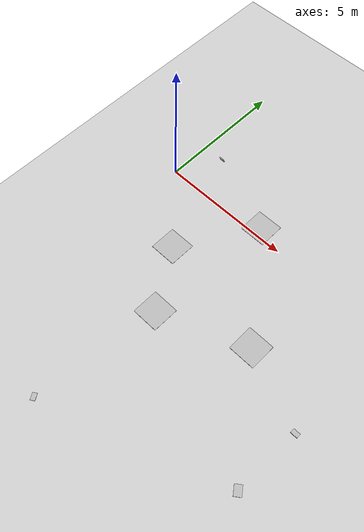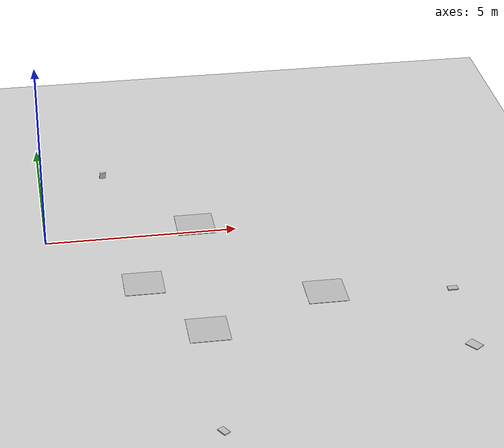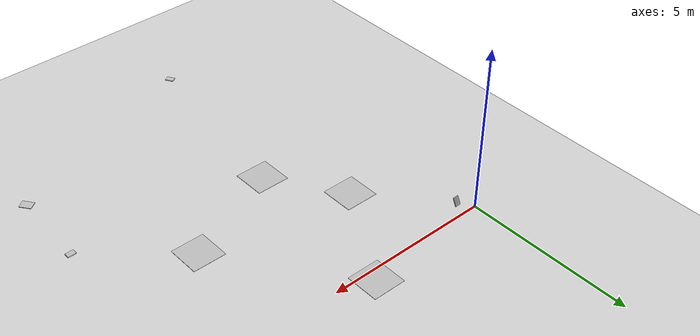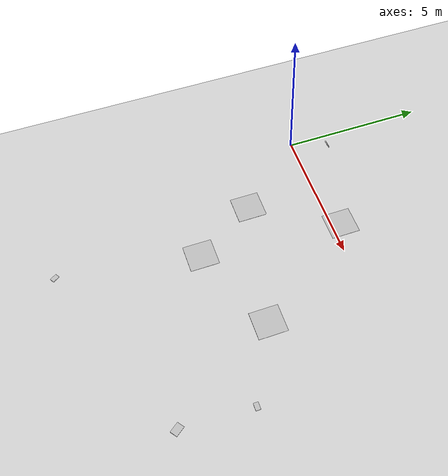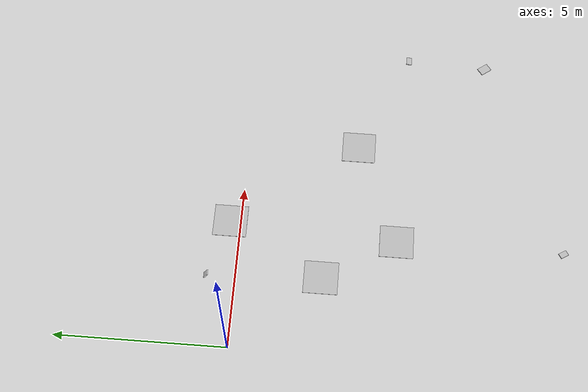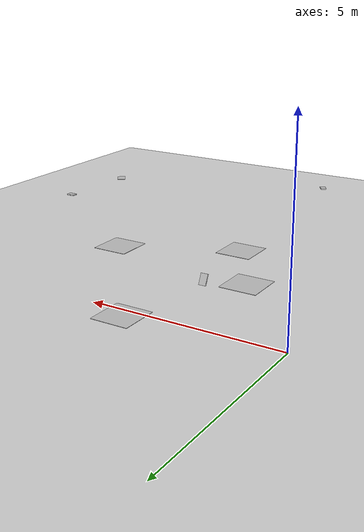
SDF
<sdf version="1.6">
 <world name="default">
  <model name="ground_plane">
   <static>1</static>
   <link name="link">
    <collision name="collision">
     <geometry><plane><normal>0 0 1</normal><size>100 100</size></plane></geometry>
     <surface><friction><ode><mu>1</mu><mu2>1</mu2></ode></friction></surface>
    </collision>
    <visual name="visual">
     <cast_shadows>0</cast_shadows>
     <geometry><plane><normal>0 0 1</normal><size>100 100</size></plane></geometry>
     <material>
      <script><uri>file://media/materials/scripts/gazebo.material</uri><name>Gazebo/Grey</name></script>
     </material>
    </visual>
    <velocity_decay><linear>0</linear><angular>0</angular></velocity_decay>
   </link>
  </model>
  <model name="book_14">
   <link name="cover">
    <pose>0 -0.000108 0.015405 0 -0 0</pose>
    <visual name="visual">
     <geometry><box><size>0.245 0.16 0.03</size></box></geometry>
     <material>
      <script>
       <uri>model://book_14/materials/scripts</uri>
       <uri>model://book_14/materials/textures</uri>
       <name>book_14</name>
      </script>
     </material>
    </visual>
    <collision name="collision"><geometry><box><size>0.245 0.16 0.03</size></box></geometry></collision>
   </link>
   <link name="page">
    <pose>0 0.000608 0.015405 0 -0 0</pose>
    <visual name="visual">
     <geometry><box><size>0.24502 0.15862 0.028</size></box></geometry>
     <material>
      <lighting>1</lighting>
      <ambient>1 1 1 1</ambient>
      <diffuse>1 1 1 1</diffuse>
      <specular>0.01 0.01 0.01 1</specular>
      <emissive>0 0 0 1</emissive>
      <shader type="vertex"><normal_map>__default__</normal_map></shader>
     </material>
    </visual>
    <collision name="collision"><geometry><box><size>0.245 0.16 0.03</size></box></geometry></collision>
   </link>
   <static>1</static>
   <pose>1.59296 0.675656 1.51705 -0.001887 1.13528 1.58829</pose>
  </model>
  <model name="newspaper_2">
   <link name="link_0">
    <visual name="visual">
     <geometry><box><size>0.35 0.25 0.02</size></box></geometry>
     <material>
      <script>
       <uri>model://newspaper_2/materials/scripts</uri>
       <uri>model://newspaper_2/materials/textures</uri>
       <name>newspaper_2</name>
      </script>
     </material>
    </visual>
    <collision name="collision"><geometry><box><size>0.35 0.25 0.02</size></box></geometry></collision>
   </link>
   <static>1</static>
   <pose>9.42495 -7.10849 0.77593 0 0 -0.934541</pose>
  </model>
  <model name="book_18_0">
   <link name="cover">
    <pose>0 -0.000108 0.015405 0 -0 0</pose>
    <visual name="visual">
     <geometry><box><size>0.245 0.16 0.03</size></box></geometry>
     <material>
      <script>
       <uri>model://book_18/materials/scripts</uri>
       <uri>model://book_18/materials/textures</uri>
       <name>book_18</name>
      </script>
     </material>
    </visual>
    <collision name="collision"><geometry><box><size>0.245 0.16 0.03</size></box></geometry></collision>
   </link>
   <link name="page">
    <pose>0 0.000608 0.015405 0 -0 0</pose>
    <visual name="visual">
     <geometry><box><size>0.24502 0.15862 0.028</size></box></geometry>
     <material>
      <lighting>1</lighting>
      <ambient>1 1 1 1</ambient>
      <diffuse>1 1 1 1</diffuse>
      <specular>0.01 0.01 0.01 1</specular>
      <emissive>0 0 0 1</emissive>
      <shader type="vertex"><normal_map>__default__</normal_map></shader>
     </material>
    </visual>
    <collision name="collision"><geometry><box><size>0.245 0.16 0.03</size></box></geometry></collision>
   </link>
   <static>1</static>
   <pose>3.29779 -9.39066 0.764084 0 0 -1.01851</pose>
  </model>
  <model name="book_14_1">
   <link name="cover">
    <pose>0 -0.000108 0.015405 0 -0 0</pose>
    <visual name="visual">
     <geometry><box><size>0.245 0.16 0.03</size></box></geometry>
     <material>
      <script>
       <uri>model://book_14/materials/scripts</uri>
       <uri>model://book_14/materials/textures</uri>
       <name>book_14</name>
      </script>
     </material>
    </visual>
    <collision name="collision"><geometry><box><size>0.245 0.16 0.03</size></box></geometry></collision>
   </link>
   <link name="page">
    <pose>0 0.000608 0.015405 0 -0 0</pose>
    <visual name="visual">
     <geometry><box><size>0.24502 0.15862 0.028</size></box></geometry>
     <material>
      <lighting>1</lighting>
      <ambient>1 1 1 1</ambient>
      <diffuse>1 1 1 1</diffuse>
      <specular>0.01 0.01 0.01 1</specular>
      <emissive>0 0 0 1</emissive>
      <shader type="vertex"><normal_map>__default__</normal_map></shader>
     </material>
    </visual>
    <collision name="collision"><geometry><box><size>0.245 0.16 0.03</size></box></geometry></collision>
   </link>
   <static>1</static>
   <pose>9.54563 -4.75392 0.763218 0 -0 0</pose>
  </model>
  <model name="Apriltag36_11_00000">
   <link name="main">
    <visual name="main_Visual">
     <geometry><box><size>1 1 0.01</size></box></geometry>
     <material>
      <script>
       <uri>model://Apriltag36_11_00000/materials/scripts</uri>
       <uri>model://Apriltag36_11_00000/materials/textures</uri>
       <name>Apriltag36_11_00000</name>
      </script>
     </material>
    </visual>
   </link>
   <static>1</static>
   <pose>3.94716 0.323996 0.038763 0 -0 0</pose>
  </model>
  <model name="Apriltag36_11_00001">
   <link name="main">
    <visual name="main_Visual">
     <geometry><box><size>1 1 0.01</size></box></geometry>
     <material>
      <script>
       <uri>model://Apriltag36_11_00001/materials/scripts</uri>
       <uri>model://Apriltag36_11_00001/materials/textures</uri>
       <name>Apriltag36_11_00001</name>
      </script>
     </material>
    </visual>
   </link>
   <static>1</static>
   <pose>6.72835 -3.36723 0.059054 0 -0 0</pose>
  </model>
  <model name="Apriltag36_11_00002">
   <link name="main">
    <visual name="main_Visual">
     <geometry><box><size>1 1 0.01</size></box></geometry>
     <material>
      <script>
       <uri>model://Apriltag36_11_00002/materials/scripts</uri>
       <uri>model://Apriltag36_11_00002/materials/textures</uri>
       <name>Apriltag36_11_00002</name>
      </script>
     </material>
    </visual>
   </link>
   <static>1</static>
   <pose>3.61469 -4.64186 0.103713 0 -0 0</pose>
  </model>
  <model name="Apriltag36_11_00007">
   <link name="main">
    <visual name="main_Visual">
     <geometry><box><size>1 1 0.01</size></box></geometry>
     <material>
      <script>
       <uri>model://Apriltag36_11_00007/materials/scripts</uri>
       <uri>model://Apriltag36_11_00007/materials/textures</uri>
       <name>Apriltag36_11_00007</name>
      </script>
     </material>
    </visual>
   </link>
   <static>1</static>
   <pose>2.28721 -2.49177 0.156167 0 -0 0</pose>
  </model>
 </world>
</sdf>
